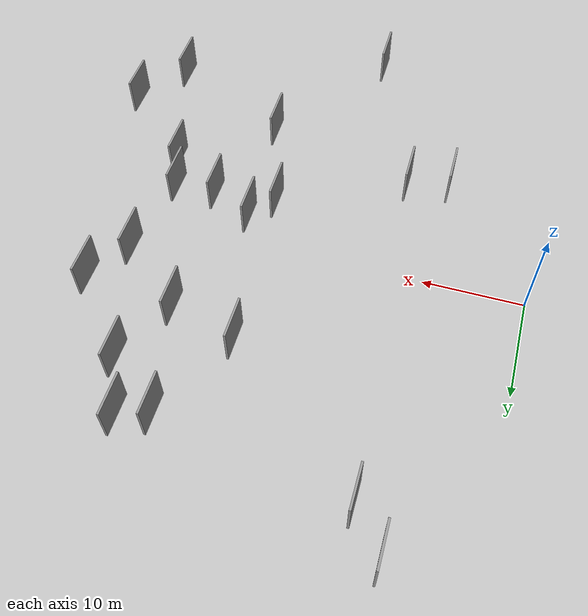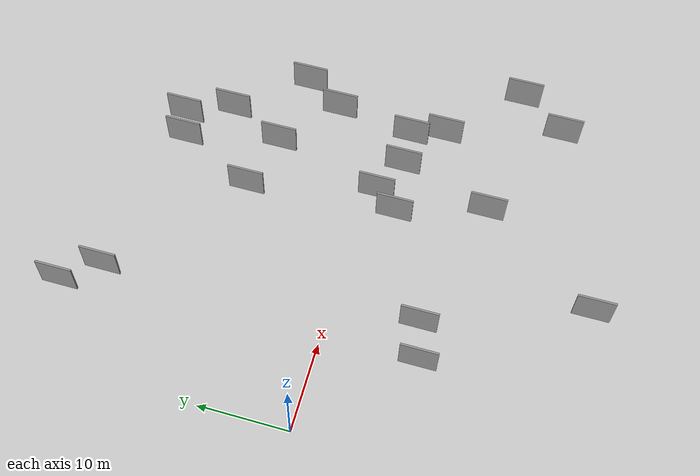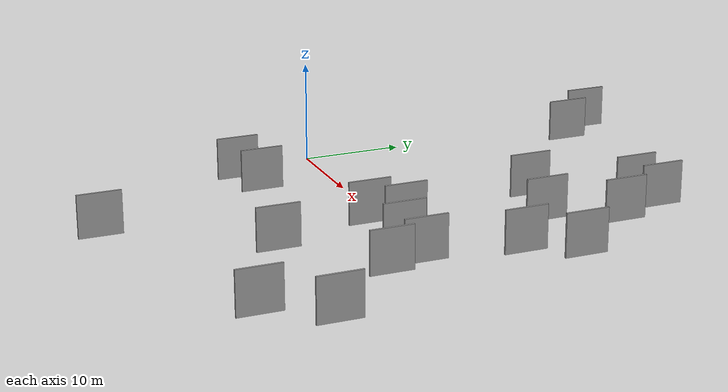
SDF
<sdf version="1.6">
 <world name="default">
  <scene>
   <sky><clouds><speed>12</speed></clouds></sky>
   <ambient>0.4 0.4 0.4 1</ambient>
   <background>0.7 0.7 0.7 1</background>
   <shadows>1</shadows>
  </scene>
  <gravity>0 0 -9.8066</gravity>
  <magnetic_field>6e-06 2.3e-05 -4.2e-05</magnetic_field>
  <physics default="0" name="default_physics" type="ode">
   <ode>
    <solver>
     <type>quick</type>
     <iters>10</iters>
     <sor>1.0</sor>
     <use_dynamic_moi_rescaling>0</use_dynamic_moi_rescaling>
    </solver>
    <constraints>
     <cfm>0</cfm>
     <erp>0.2</erp>
     <contact_max_correcting_vel>100</contact_max_correcting_vel>
     <contact_surface_layer>0.001</contact_surface_layer>
    </constraints>
   </ode>
   <max_step_size>0.004</max_step_size>
   <real_time_factor>1</real_time_factor>
   <real_time_update_rate>250</real_time_update_rate>
  </physics>
  <light name="sun" type="directional">
   <pose>0 0 10 0 0 0</pose>
   <diffuse>0.8 0.8 0.8 1</diffuse>
   <specular>0.2 0.2 0.2 1</specular>
   <attenuation>
    <range>1000</range>
    <constant>0.9</constant>
    <linear>0.01</linear>
    <quadratic>0.001</quadratic>
   </attenuation>
   <direction>-0.5 0.1 -0.9</direction>
  </light>
  <model name="grey_wall_1">
   <static>1</static>
   <pose>32.1190 22.2360 2.5 0.000000 0.000000 1.570796</pose>
   <link name="link">
    <pose>0 0 2.00 0 0 0</pose>
    <collision name="collision"><geometry><box><size>4.00 0.2 4.00</size></box></geometry></collision>
    <visual name="visual">
     <cast_shadows>0</cast_shadows>
     <geometry><box><size>4.00 0.2 4.00</size></box></geometry>
     <material>
      <script>
       <uri>model://grey_wall/materials/scripts</uri>
       <uri>model://grey_wall/materials/textures</uri>
       <name>vrc/grey_wall</name>
      </script>
     </material>
    </visual>
   </link>
  </model>
  <model name="grey_wall_2">
   <static>1</static>
   <pose>28.8971 -13.4470 2.5 0.000000 0.000000 1.570796</pose>
   <link name="link">
    <pose>0 0 2.00 0 0 0</pose>
    <collision name="collision"><geometry><box><size>4.00 0.2 4.00</size></box></geometry></collision>
    <visual name="visual">
     <cast_shadows>0</cast_shadows>
     <geometry><box><size>4.00 0.2 4.00</size></box></geometry>
     <material>
      <script>
       <uri>model://grey_wall/materials/scripts</uri>
       <uri>model://grey_wall/materials/textures</uri>
       <name>vrc/grey_wall</name>
      </script>
     </material>
    </visual>
   </link>
  </model>
  <model name="grey_wall_3">
   <static>1</static>
   <pose>28.0443 -1.2903 2.5 0.000000 0.000000 1.570796</pose>
   <link name="link">
    <pose>0 0 2.00 0 0 0</pose>
    <collision name="collision"><geometry><box><size>4.00 0.2 4.00</size></box></geometry></collision>
    <visual name="visual">
     <cast_shadows>0</cast_shadows>
     <geometry><box><size>4.00 0.2 4.00</size></box></geometry>
     <material>
      <script>
       <uri>model://grey_wall/materials/scripts</uri>
       <uri>model://grey_wall/materials/textures</uri>
       <name>vrc/grey_wall</name>
      </script>
     </material>
    </visual>
   </link>
  </model>
  <model name="grey_wall_4">
   <static>1</static>
   <pose>40.3377 9.8438 2.5 0.000000 0.000000 1.570796</pose>
   <link name="link">
    <pose>0 0 2.00 0 0 0</pose>
    <collision name="collision"><geometry><box><size>4.00 0.2 4.00</size></box></geometry></collision>
    <visual name="visual">
     <cast_shadows>0</cast_shadows>
     <geometry><box><size>4.00 0.2 4.00</size></box></geometry>
     <material>
      <script>
       <uri>model://grey_wall/materials/scripts</uri>
       <uri>model://grey_wall/materials/textures</uri>
       <name>vrc/grey_wall</name>
      </script>
     </material>
    </visual>
   </link>
  </model>
  <model name="grey_wall_5">
   <static>1</static>
   <pose>29.1196 21.2930 2.5 0.000000 0.000000 1.570796</pose>
   <link name="link">
    <pose>0 0 2.00 0 0 0</pose>
    <collision name="collision"><geometry><box><size>4.00 0.2 4.00</size></box></geometry></collision>
    <visual name="visual">
     <cast_shadows>0</cast_shadows>
     <geometry><box><size>4.00 0.2 4.00</size></box></geometry>
     <material>
      <script>
       <uri>model://grey_wall/materials/scripts</uri>
       <uri>model://grey_wall/materials/textures</uri>
       <name>vrc/grey_wall</name>
      </script>
     </material>
    </visual>
   </link>
  </model>
  <model name="grey_wall_6">
   <static>1</static>
   <pose>37.6463 5.5457 2.5 0.000000 0.000000 1.570796</pose>
   <link name="link">
    <pose>0 0 2.00 0 0 0</pose>
    <collision name="collision"><geometry><box><size>4.00 0.2 4.00</size></box></geometry></collision>
    <visual name="visual">
     <cast_shadows>0</cast_shadows>
     <geometry><box><size>4.00 0.2 4.00</size></box></geometry>
     <material>
      <script>
       <uri>model://grey_wall/materials/scripts</uri>
       <uri>model://grey_wall/materials/textures</uri>
       <name>vrc/grey_wall</name>
      </script>
     </material>
    </visual>
   </link>
  </model>
  <model name="grey_wall_7">
   <static>1</static>
   <pose>10.9579 24.1774 2.5 0.000000 0.000000 1.570796</pose>
   <link name="link">
    <pose>0 0 2.00 0 0 0</pose>
    <collision name="collision"><geometry><box><size>4.00 0.2 4.00</size></box></geometry></collision>
    <visual name="visual">
     <cast_shadows>0</cast_shadows>
     <geometry><box><size>4.00 0.2 4.00</size></box></geometry>
     <material>
      <script>
       <uri>model://grey_wall/materials/scripts</uri>
       <uri>model://grey_wall/materials/textures</uri>
       <name>vrc/grey_wall</name>
      </script>
     </material>
    </visual>
   </link>
  </model>
  <model name="grey_wall_8">
   <static>1</static>
   <pose>31.3705 10.8681 2.5 0.000000 0.000000 1.570796</pose>
   <link name="link">
    <pose>0 0 2.00 0 0 0</pose>
    <collision name="collision"><geometry><box><size>4.00 0.2 4.00</size></box></geometry></collision>
    <visual name="visual">
     <cast_shadows>0</cast_shadows>
     <geometry><box><size>4.00 0.2 4.00</size></box></geometry>
     <material>
      <script>
       <uri>model://grey_wall/materials/scripts</uri>
       <uri>model://grey_wall/materials/textures</uri>
       <name>vrc/grey_wall</name>
      </script>
     </material>
    </visual>
   </link>
  </model>
  <model name="grey_wall_9">
   <static>1</static>
   <pose>37.5793 -6.7383 2.5 0.000000 0.000000 1.570796</pose>
   <link name="link">
    <pose>0 0 2.00 0 0 0</pose>
    <collision name="collision"><geometry><box><size>4.00 0.2 4.00</size></box></geometry></collision>
    <visual name="visual">
     <cast_shadows>0</cast_shadows>
     <geometry><box><size>4.00 0.2 4.00</size></box></geometry>
     <material>
      <script>
       <uri>model://grey_wall/materials/scripts</uri>
       <uri>model://grey_wall/materials/textures</uri>
       <name>vrc/grey_wall</name>
      </script>
     </material>
    </visual>
   </link>
  </model>
  <model name="grey_wall_10">
   <static>1</static>
   <pose>13.7438 -9.6040 2.5 0.000000 0.000000 1.570796</pose>
   <link name="link">
    <pose>0 0 2.00 0 0 0</pose>
    <collision name="collision"><geometry><box><size>4.00 0.2 4.00</size></box></geometry></collision>
    <visual name="visual">
     <cast_shadows>0</cast_shadows>
     <geometry><box><size>4.00 0.2 4.00</size></box></geometry>
     <material>
      <script>
       <uri>model://grey_wall/materials/scripts</uri>
       <uri>model://grey_wall/materials/textures</uri>
       <name>vrc/grey_wall</name>
      </script>
     </material>
    </visual>
   </link>
  </model>
  <model name="grey_wall_11">
   <static>1</static>
   <pose>45.0636 -14.2656 2.5 0.000000 0.000000 1.570796</pose>
   <link name="link">
    <pose>0 0 2.00 0 0 0</pose>
    <collision name="collision"><geometry><box><size>4.00 0.2 4.00</size></box></geometry></collision>
    <visual name="visual">
     <cast_shadows>0</cast_shadows>
     <geometry><box><size>4.00 0.2 4.00</size></box></geometry>
     <material>
      <script>
       <uri>model://grey_wall/materials/scripts</uri>
       <uri>model://grey_wall/materials/textures</uri>
       <name>vrc/grey_wall</name>
      </script>
     </material>
    </visual>
   </link>
  </model>
  <model name="grey_wall_12">
   <static>1</static>
   <pose>19.8874 -26.5173 2.5 0.000000 0.000000 1.570796</pose>
   <link name="link">
    <pose>0 0 2.00 0 0 0</pose>
    <collision name="collision"><geometry><box><size>4.00 0.2 4.00</size></box></geometry></collision>
    <visual name="visual">
     <cast_shadows>0</cast_shadows>
     <geometry><box><size>4.00 0.2 4.00</size></box></geometry>
     <material>
      <script>
       <uri>model://grey_wall/materials/scripts</uri>
       <uri>model://grey_wall/materials/textures</uri>
       <name>vrc/grey_wall</name>
      </script>
     </material>
    </visual>
   </link>
  </model>
  <model name="grey_wall_13">
   <static>1</static>
   <pose>36.3445 -3.1122 2.5 0.000000 0.000000 1.570796</pose>
   <link name="link">
    <pose>0 0 2.00 0 0 0</pose>
    <collision name="collision"><geometry><box><size>4.00 0.2 4.00</size></box></geometry></collision>
    <visual name="visual">
     <cast_shadows>0</cast_shadows>
     <geometry><box><size>4.00 0.2 4.00</size></box></geometry>
     <material>
      <script>
       <uri>model://grey_wall/materials/scripts</uri>
       <uri>model://grey_wall/materials/textures</uri>
       <name>vrc/grey_wall</name>
      </script>
     </material>
    </visual>
   </link>
  </model>
  <model name="grey_wall_14">
   <static>1</static>
   <pose>8.0269 27.8364 2.5 0.000000 0.000000 1.570796</pose>
   <link name="link">
    <pose>0 0 2.00 0 0 0</pose>
    <collision name="collision"><geometry><box><size>4.00 0.2 4.00</size></box></geometry></collision>
    <visual name="visual">
     <cast_shadows>0</cast_shadows>
     <geometry><box><size>4.00 0.2 4.00</size></box></geometry>
     <material>
      <script>
       <uri>model://grey_wall/materials/scripts</uri>
       <uri>model://grey_wall/materials/textures</uri>
       <name>vrc/grey_wall</name>
      </script>
     </material>
    </visual>
   </link>
  </model>
  <model name="grey_wall_15">
   <static>1</static>
   <pose>32.1967 -3.2416 2.5 0.000000 0.000000 1.570796</pose>
   <link name="link">
    <pose>0 0 2.00 0 0 0</pose>
    <collision name="collision"><geometry><box><size>4.00 0.2 4.00</size></box></geometry></collision>
    <visual name="visual">
     <cast_shadows>0</cast_shadows>
     <geometry><box><size>4.00 0.2 4.00</size></box></geometry>
     <material>
      <script>
       <uri>model://grey_wall/materials/scripts</uri>
       <uri>model://grey_wall/materials/textures</uri>
       <name>vrc/grey_wall</name>
      </script>
     </material>
    </visual>
   </link>
  </model>
  <model name="grey_wall_16">
   <static>1</static>
   <pose>9.5676 -10.5660 2.5 0.000000 0.000000 1.570796</pose>
   <link name="link">
    <pose>0 0 2.00 0 0 0</pose>
    <collision name="collision"><geometry><box><size>4.00 0.2 4.00</size></box></geometry></collision>
    <visual name="visual">
     <cast_shadows>0</cast_shadows>
     <geometry><box><size>4.00 0.2 4.00</size></box></geometry>
     <material>
      <script>
       <uri>model://grey_wall/materials/scripts</uri>
       <uri>model://grey_wall/materials/textures</uri>
       <name>vrc/grey_wall</name>
      </script>
     </material>
    </visual>
   </link>
  </model>
  <model name="grey_wall_17">
   <static>1</static>
   <pose>25.9573 -3.8339 2.5 0.000000 0.000000 1.570796</pose>
   <link name="link">
    <pose>0 0 2.00 0 0 0</pose>
    <collision name="collision"><geometry><box><size>4.00 0.2 4.00</size></box></geometry></collision>
    <visual name="visual">
     <cast_shadows>0</cast_shadows>
     <geometry><box><size>4.00 0.2 4.00</size></box></geometry>
     <material>
      <script>
       <uri>model://grey_wall/materials/scripts</uri>
       <uri>model://grey_wall/materials/textures</uri>
       <name>vrc/grey_wall</name>
      </script>
     </material>
    </visual>
   </link>
  </model>
  <model name="grey_wall_18">
   <static>1</static>
   <pose>41.3296 -19.4656 2.5 0.000000 0.000000 1.570796</pose>
   <link name="link">
    <pose>0 0 2.00 0 0 0</pose>
    <collision name="collision"><geometry><box><size>4.00 0.2 4.00</size></box></geometry></collision>
    <visual name="visual">
     <cast_shadows>0</cast_shadows>
     <geometry><box><size>4.00 0.2 4.00</size></box></geometry>
     <material>
      <script>
       <uri>model://grey_wall/materials/scripts</uri>
       <uri>model://grey_wall/materials/textures</uri>
       <name>vrc/grey_wall</name>
      </script>
     </material>
    </visual>
   </link>
  </model>
  <model name="grey_wall_19">
   <static>1</static>
   <pose>24.8451 12.6179 2.5 0.000000 0.000000 1.570796</pose>
   <link name="link">
    <pose>0 0 2.00 0 0 0</pose>
    <collision name="collision"><geometry><box><size>4.00 0.2 4.00</size></box></geometry></collision>
    <visual name="visual">
     <cast_shadows>0</cast_shadows>
     <geometry><box><size>4.00 0.2 4.00</size></box></geometry>
     <material>
      <script>
       <uri>model://grey_wall/materials/scripts</uri>
       <uri>model://grey_wall/materials/textures</uri>
       <name>vrc/grey_wall</name>
      </script>
     </material>
    </visual>
   </link>
  </model>
  <model name="grey_wall_20">
   <static>1</static>
   <pose>34.2785 17.1792 2.5 0.000000 0.000000 1.570796</pose>
   <link name="link">
    <pose>0 0 2.00 0 0 0</pose>
    <collision name="collision"><geometry><box><size>4.00 0.2 4.00</size></box></geometry></collision>
    <visual name="visual">
     <cast_shadows>0</cast_shadows>
     <geometry><box><size>4.00 0.2 4.00</size></box></geometry>
     <material>
      <script>
       <uri>model://grey_wall/materials/scripts</uri>
       <uri>model://grey_wall/materials/textures</uri>
       <name>vrc/grey_wall</name>
      </script>
     </material>
    </visual>
   </link>
  </model>
 </world>
</sdf>
